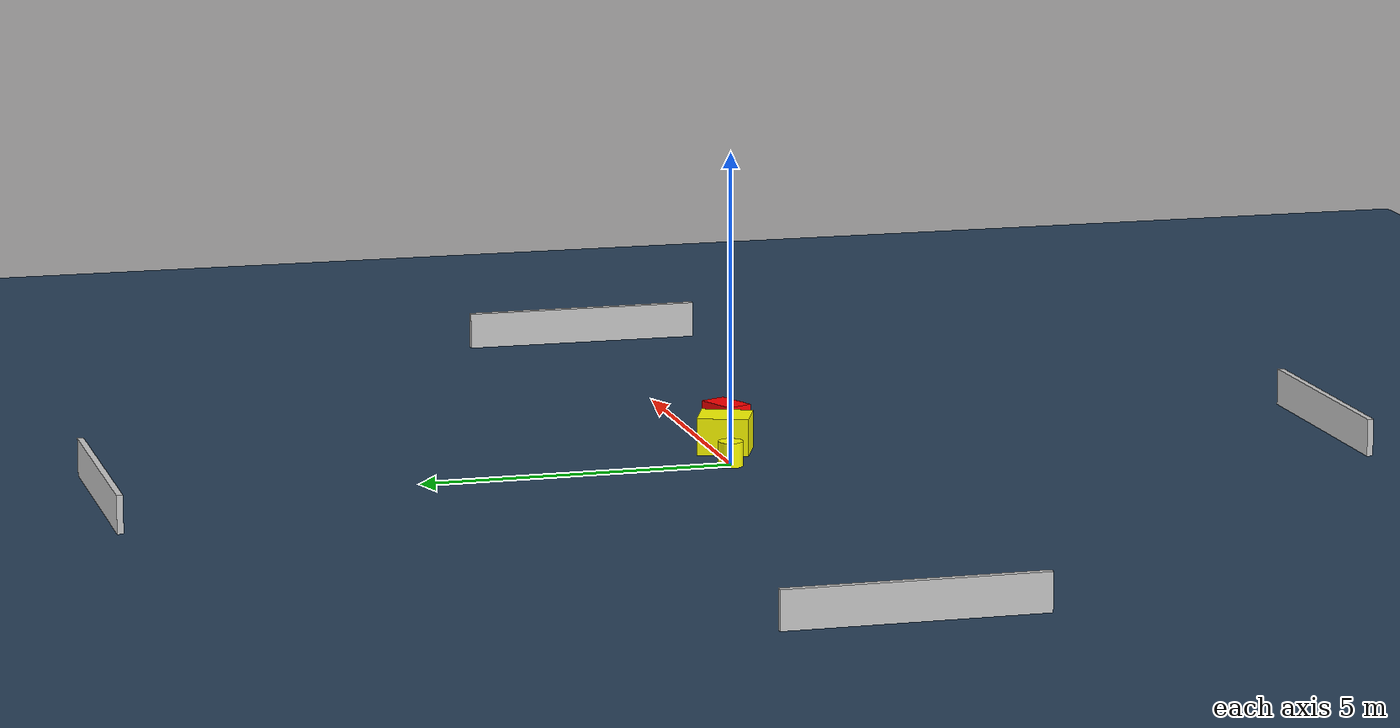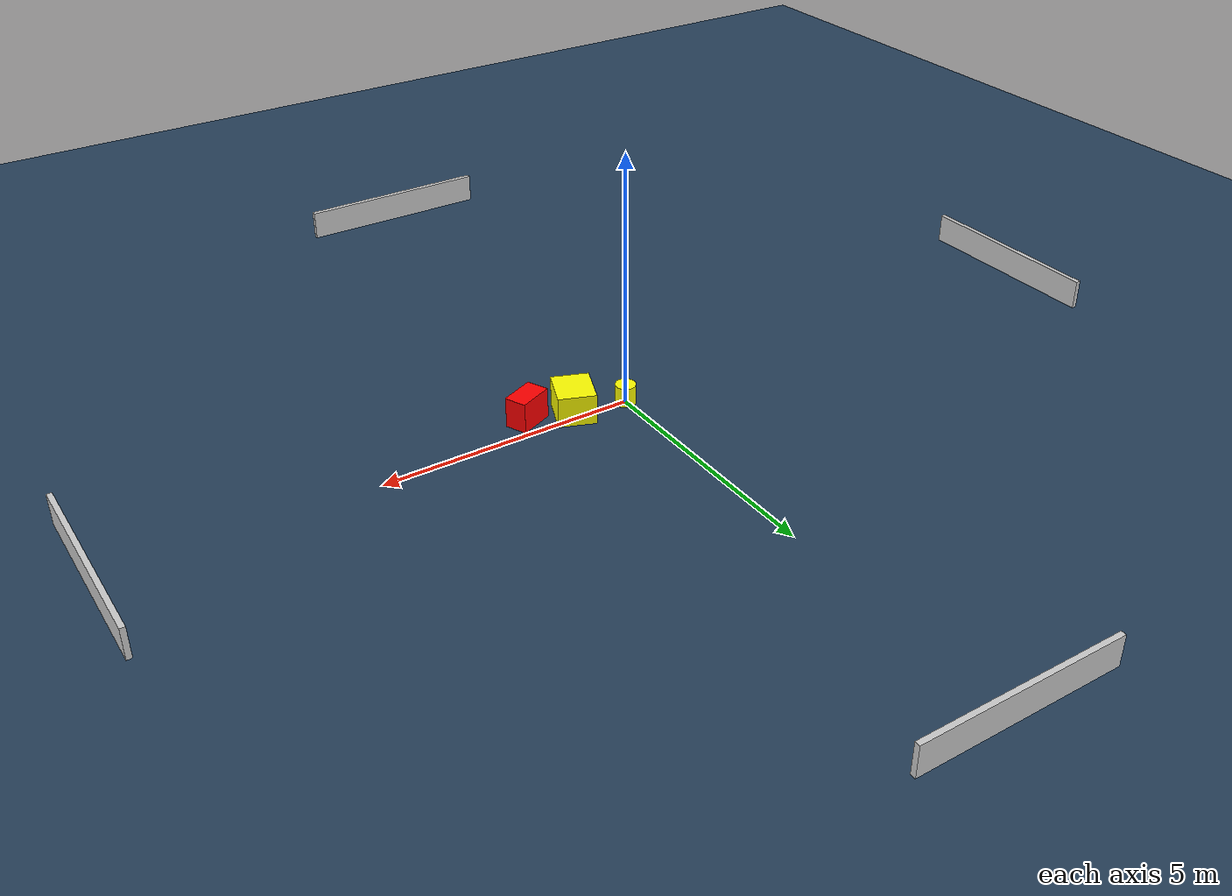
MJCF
<?xml version="1.0" ?>
<mujoco model="generated_environment">
  <option timestep="0.01" integrator="RK4" cone="elliptic"/>
  <default>
    <geom density="1"/>
  </default>
  <asset>
    <texture builtin="gradient" height="3072" name="skybox" rgb1="0.3 0.5 0.7" rgb2="0 0 0" type="skybox" width="512"/>
    <texture builtin="checker" height="300" name="groundplane" rgb1="0.2 0.3 0.4" rgb2="0.1 0.2 0.3" type="2d" width="300"/>
    <material name="groundplane" reflectance="0.2" texrepeat="5 5" texture="groundplane"/>
  </asset>
  <worldbody>
    <light dir="0 0 -1" directional="true" pos="0 0 1.5"/>
    <geom condim="3" friction="0.5 0.005 0.001" material="groundplane" name="floor" pos="0 0 0" size="0 0 0.05" type="plane"/>
    <body name="walls">
      <geom name="wall_1" condim="4" pos="-10.0 0.0 0.3" rgba="0.800000011920929 0.800000011920929 0.800000011920929 1.0" size="0.05 2.0 0.3" type="box"/>
      <geom name="wall_2" condim="4" pos="10.0 0.0 0.3" rgba="0.800000011920929 0.800000011920929 0.800000011920929 1.0" size="0.05 2.0 0.3" type="box"/>
      <geom name="wall_3" condim="4" pos="0.0 -10.0 0.3" rgba="0.800000011920929 0.800000011920929 0.800000011920929 1.0" size="2.0 0.05 0.3" type="box"/>
      <geom name="wall_4" condim="4" pos="0.0 10.0 0.3" rgba="0.800000011920929 0.800000011920929 0.800000011920929 1.0" size="2.0 0.05 0.3" type="box"/>
    </body>
    <body name="robot">
      <joint name="joint_x" type="slide" pos="0 0 0" axis="1 0 0"/>
      <joint name="joint_y" type="slide" pos="0 0 0" axis="0 1 0"/>
      <geom name="robot" type="cylinder" pos="0.0 0.0 0.2" size="0.2 0.2 0.0" mass="5.0" friction="1.0 0.005 0.0001" condim="4" rgba="1.0 1.0 0.0 1.0"/>
    </body>
    <body name="obstacle_1_movable">
      <geom name="obstacle_1_movable" condim="4" pos="1.0278756075683229 -0.18798681780202292 0.3" euler="0 0 158.63440405569645" friction="0.0 0.005 0.001" rgba="1.0 1.0 0.0 1.0" size="0.3635815901462113 0.41459718689017466 0.3" type="box" mass="0.1"/>
      <joint type="free"/>
    </body>
    <body name="obstacle_2_static">
      <geom name="obstacle_2_static" condim="4" pos="1.8805144255813708 -0.4355137314546327 0.3" euler="0 0 293.6173865111074" friction="0.0 0.005 0.001" rgba="1.0 0.0 0.0 1.0" size="0.2189347934943657 0.3510328414359962 0.3" type="box"/>
    </body>
  </worldbody>
  <actuator>
    <motor name="actuator_x" joint="joint_x" gear="1" ctrlrange="-1 1"/>
    <motor name="actuator_y" joint="joint_y" gear="1" ctrlrange="-1 1"/>
  </actuator>
</mujoco>
